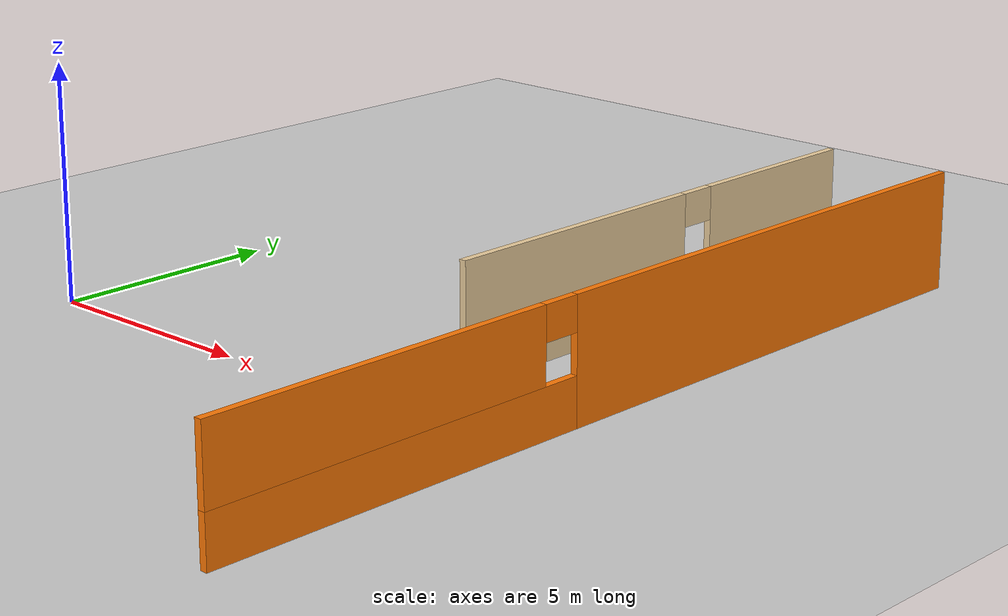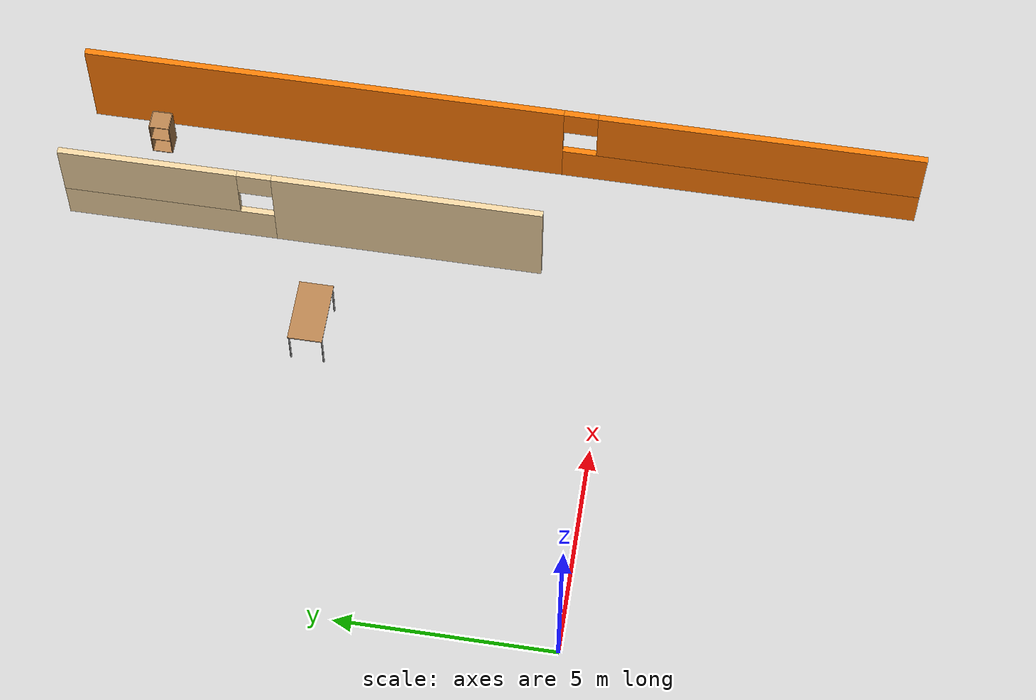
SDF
<sdf version="1.6">
 <world name="default">
  <model name="ground_plane">
   <static>1</static>
   <link name="link">
    <collision name="collision">
     <geometry><plane><normal>0 0 1</normal><size>100 100</size></plane></geometry>
     <surface>
      <contact><collide_bitmask>65535</collide_bitmask></contact>
      <friction><ode><mu>100</mu><mu2>50</mu2></ode></friction>
     </surface>
    </collision>
    <visual name="visual">
     <cast_shadows>0</cast_shadows>
     <geometry><plane><normal>0 0 1</normal><size>100 100</size></plane></geometry>
     <material>
      <script><uri>file://media/materials/scripts/gazebo.material</uri><name>Gazebo/Grey</name></script>
     </material>
    </visual>
   </link>
  </model>
  <model name="office">
   <pose>-7.49516 -7.8361 0 0 -0 0</pose>
   <link name="Wall_126">
    <pose>19.8252 10.9991 0 0 0 -1.5708</pose>
    <visual name="Wall_126_Visual_0">
     <pose>-4.20483 0 1.25 0 -0 0</pose>
     <geometry><box><size>11.3403 0.15 2.5</size></box></geometry>
     <material>
      <script><uri>file://media/materials/scripts/gazebo.material</uri><name>Gazebo/Grey</name></script>
      <ambient>0.996078 0.47451 0.0196078 1</ambient>
     </material>
     <meta><layer>0</layer></meta>
    </visual>
    <collision name="Wall_126_Collision_0">
     <geometry><box><size>11.3403 0.15 2.5</size></box></geometry>
     <pose>-4.20483 0 1.25 0 -0 0</pose>
    </collision>
    <visual name="Wall_126_Visual_1">
     <pose>5.67017 0 0.5 0 -0 0</pose>
     <geometry><box><size>8.40965 0.15 1</size></box></geometry>
     <material>
      <script><uri>file://media/materials/scripts/gazebo.material</uri><name>Gazebo/Grey</name></script>
      <ambient>0.996078 0.47451 0.0196078 1</ambient>
     </material>
     <meta><layer>0</layer></meta>
    </visual>
    <collision name="Wall_126_Collision_1">
     <geometry><box><size>8.40965 0.15 1</size></box></geometry>
     <pose>5.67017 0 0.5 0 -0 0</pose>
    </collision>
    <visual name="Wall_126_Visual_2">
     <pose>6.07017 0 1.75 0 -0 0</pose>
     <geometry><box><size>7.60965 0.15 1.5</size></box></geometry>
     <material>
      <script><uri>file://media/materials/scripts/gazebo.material</uri><name>Gazebo/Grey</name></script>
      <ambient>0.996078 0.47451 0.0196078 1</ambient>
     </material>
     <meta><layer>0</layer></meta>
    </visual>
    <collision name="Wall_126_Collision_2">
     <geometry><box><size>7.60965 0.15 1.5</size></box></geometry>
     <pose>6.07017 0 1.75 0 -0 0</pose>
    </collision>
    <visual name="Wall_126_Visual_3">
     <pose>1.86535 0 2.15 0 -0 0</pose>
     <geometry><box><size>0.8 0.15 0.7</size></box></geometry>
     <material>
      <script><uri>file://media/materials/scripts/gazebo.material</uri><name>Gazebo/Grey</name></script>
      <ambient>0.996078 0.47451 0.0196078 1</ambient>
     </material>
     <meta><layer>0</layer></meta>
    </visual>
    <collision name="Wall_126_Collision_3">
     <geometry><box><size>0.8 0.15 0.7</size></box></geometry>
     <pose>1.86535 0 2.15 0 -0 0</pose>
    </collision>
   </link>
   <link name="Wall_137">
    <pose>17.0192 15.2446 0 0 -0 1.5708</pose>
    <visual name="Wall_137_Visual_0">
     <pose>-2.49103 0 1.25 0 -0 0</pose>
     <geometry><box><size>6.27695 0.15 2.5</size></box></geometry>
     <material>
      <script><uri>file://media/materials/scripts/gazebo.material</uri><name>Gazebo/Grey</name></script>
      <ambient>0.921569 0.807843 0.615686 1</ambient>
     </material>
     <meta><layer>0</layer></meta>
    </visual>
    <collision name="Wall_137_Collision_0">
     <geometry><box><size>6.27695 0.15 2.5</size></box></geometry>
     <pose>-2.49103 0 1.25 0 -0 0</pose>
    </collision>
    <visual name="Wall_137_Visual_1">
     <pose>3.13847 0 0.5 0 -0 0</pose>
     <geometry><box><size>4.98205 0.15 1</size></box></geometry>
     <material>
      <script><uri>file://media/materials/scripts/gazebo.material</uri><name>Gazebo/Grey</name></script>
      <ambient>0.921569 0.807843 0.615686 1</ambient>
     </material>
     <meta><layer>0</layer></meta>
    </visual>
    <collision name="Wall_137_Collision_1">
     <geometry><box><size>4.98205 0.15 1</size></box></geometry>
     <pose>3.13847 0 0.5 0 -0 0</pose>
    </collision>
    <visual name="Wall_137_Visual_2">
     <pose>3.53847 0 1.75 0 -0 0</pose>
     <geometry><box><size>4.18206 0.15 1.5</size></box></geometry>
     <material>
      <script><uri>file://media/materials/scripts/gazebo.material</uri><name>Gazebo/Grey</name></script>
      <ambient>0.921569 0.807843 0.615686 1</ambient>
     </material>
     <meta><layer>0</layer></meta>
    </visual>
    <collision name="Wall_137_Collision_2">
     <geometry><box><size>4.18206 0.15 1.5</size></box></geometry>
     <pose>3.53847 0 1.75 0 -0 0</pose>
    </collision>
    <visual name="Wall_137_Visual_3">
     <pose>1.04744 0 2.15 0 -0 0</pose>
     <geometry><box><size>0.8 0.15 0.7</size></box></geometry>
     <material>
      <script><uri>file://media/materials/scripts/gazebo.material</uri><name>Gazebo/Grey</name></script>
      <ambient>0.921569 0.807843 0.615686 1</ambient>
     </material>
     <meta><layer>0</layer></meta>
    </visual>
    <collision name="Wall_137_Collision_3">
     <geometry><box><size>0.8 0.15 0.7</size></box></geometry>
     <pose>1.04744 0 2.15 0 -0 0</pose>
    </collision>
   </link>
   <static>1</static>
  </model>
  <model name="table_13">
   <static>1</static>
   <link name="link">
    <collision name="surface">
     <pose>0 0 1 0 -0 0</pose>
     <geometry><box><size>1.5 0.8 0.03</size></box></geometry>
     <surface><friction><ode><mu>0.6</mu><mu2>0.6</mu2></ode></friction></surface>
    </collision>
    <visual name="visual1">
     <pose>0 0 1 0 -0 0</pose>
     <geometry><box><size>1.5 0.8 0.03</size></box></geometry>
     <material>
      <script><uri>file://media/materials/scripts/gazebo.material</uri><name>Gazebo/Wood</name></script>
     </material>
    </visual>
    <collision name="front_left_leg">
     <pose>0.68 0.38 0.5 0 -0 0</pose>
     <geometry><cylinder><radius>0.02</radius><length>1</length></cylinder></geometry>
    </collision>
    <visual name="front_left_leg">
     <pose>0.68 0.38 0.5 0 -0 0</pose>
     <geometry><cylinder><radius>0.02</radius><length>1</length></cylinder></geometry>
     <material>
      <script><uri>file://media/materials/scripts/gazebo.material</uri><name>Gazebo/Grey</name></script>
     </material>
    </visual>
    <collision name="front_right_leg">
     <pose>0.68 -0.38 0.5 0 -0 0</pose>
     <geometry><cylinder><radius>0.02</radius><length>1</length></cylinder></geometry>
    </collision>
    <visual name="front_right_leg">
     <pose>0.68 -0.38 0.5 0 -0 0</pose>
     <geometry><cylinder><radius>0.02</radius><length>1</length></cylinder></geometry>
     <material>
      <script><uri>file://media/materials/scripts/gazebo.material</uri><name>Gazebo/Grey</name></script>
     </material>
    </visual>
    <collision name="back_right_leg">
     <pose>-0.68 -0.38 0.5 0 -0 0</pose>
     <geometry><cylinder><radius>0.02</radius><length>1</length></cylinder></geometry>
    </collision>
    <visual name="back_right_leg">
     <pose>-0.68 -0.38 0.5 0 -0 0</pose>
     <geometry><cylinder><radius>0.02</radius><length>1</length></cylinder></geometry>
     <material>
      <script><uri>file://media/materials/scripts/gazebo.material</uri><name>Gazebo/Grey</name></script>
     </material>
    </visual>
    <collision name="back_left_leg">
     <pose>-0.68 0.38 0.5 0 -0 0</pose>
     <geometry><cylinder><radius>0.02</radius><length>1</length></cylinder></geometry>
    </collision>
    <visual name="back_left_leg">
     <pose>-0.68 0.38 0.5 0 -0 0</pose>
     <geometry><cylinder><radius>0.02</radius><length>1</length></cylinder></geometry>
     <material>
      <script><uri>file://media/materials/scripts/gazebo.material</uri><name>Gazebo/Grey</name></script>
     </material>
    </visual>
   </link>
   <pose>7.03282 6.74702 0 0 -0 0</pose>
  </model>
  <model name="cabinet_4">
   <static>1</static>
   <link name="cabinet_bottom_plate">
    <inertial>
     <pose>0 0 -1 0 -0 0</pose>
     <inertia><ixx>2.05</ixx><ixy>0</ixy><ixz>0</ixz><iyy>2.05</iyy><iyz>0</iyz><izz>2.05</izz></inertia>
     <mass>25</mass>
    </inertial>
    <collision name="cabinet_bottom_plate_geom">
     <pose>0 0 0.01 0 -0 0</pose>
     <geometry><box><size>0.45 0.45 0.02</size></box></geometry>
    </collision>
    <visual name="cabinet_bottom_plate_geom_visual">
     <pose>0 0 0.01 0 -0 0</pose>
     <geometry><box><size>0.45 0.45 0.02</size></box></geometry>
     <material>
      <script><uri>file://media/materials/scripts/gazebo.material</uri><name>Gazebo/Wood</name></script>
     </material>
    </visual>
    <collision name="cabinet_bottom_plate_geom_cabinet_back_plate">
     <pose>0.235 0 0.51 0 -0 0</pose>
     <geometry><box><size>0.02 0.45 1.02</size></box></geometry>
    </collision>
    <visual name="cabinet_bottom_plate_geom_cabinet_back_plate_visual">
     <pose>0.235 0 0.51 0 -0 0</pose>
     <geometry><box><size>0.02 0.45 1.02</size></box></geometry>
     <material>
      <script><uri>file://media/materials/scripts/gazebo.material</uri><name>Gazebo/Wood</name></script>
     </material>
    </visual>
    <collision name="cabinet_bottom_plate_geom_cabinet_left_plate">
     <pose>0 0.235 0.51 0 -0 0</pose>
     <geometry><box><size>0.45 0.02 1.02</size></box></geometry>
    </collision>
    <visual name="cabinet_bottom_plate_geom_cabinet_left_plate_visual">
     <pose>0 0.235 0.51 0 -0 0</pose>
     <geometry><box><size>0.45 0.02 1.02</size></box></geometry>
     <material>
      <script><uri>file://media/materials/scripts/gazebo.material</uri><name>Gazebo/Wood</name></script>
     </material>
    </visual>
    <collision name="cabinet_bottom_plate_geom_cabinet_middle_plate">
     <pose>0 0 0.51 0 -0 0</pose>
     <geometry><box><size>0.45 0.45 0.02</size></box></geometry>
    </collision>
    <visual name="cabinet_bottom_plate_geom_cabinet_middle_plate_visual">
     <pose>0 0 0.51 0 -0 0</pose>
     <geometry><box><size>0.45 0.45 0.02</size></box></geometry>
     <material>
      <script><uri>file://media/materials/scripts/gazebo.material</uri><name>Gazebo/Wood</name></script>
     </material>
    </visual>
    <collision name="cabinet_bottom_plate_geom_cabinet_right_plate">
     <pose>0 -0.235 0.51 0 -0 0</pose>
     <geometry><box><size>0.45 0.02 1.02</size></box></geometry>
    </collision>
    <visual name="cabinet_bottom_plate_geom_cabinet_right_plate_visual">
     <pose>0 -0.235 0.51 0 -0 0</pose>
     <geometry><box><size>0.45 0.02 1.02</size></box></geometry>
     <material>
      <script><uri>file://media/materials/scripts/gazebo.material</uri><name>Gazebo/Wood</name></script>
     </material>
    </visual>
    <collision name="cabinet_bottom_plate_geom_cabinet_top_plate">
     <pose>0 0 1.01 0 -0 0</pose>
     <geometry><box><size>0.45 0.45 0.02</size></box></geometry>
    </collision>
    <visual name="cabinet_bottom_plate_geom_cabinet_top_plate_visual">
     <pose>0 0 1.01 0 -0 0</pose>
     <geometry><box><size>0.45 0.45 0.02</size></box></geometry>
     <material>
      <script><uri>file://media/materials/scripts/gazebo.material</uri><name>Gazebo/Wood</name></script>
     </material>
    </visual>
   </link>
   <pose>11.6434 11.2334 0 0 -0 0</pose>
  </model>
 </world>
</sdf>
